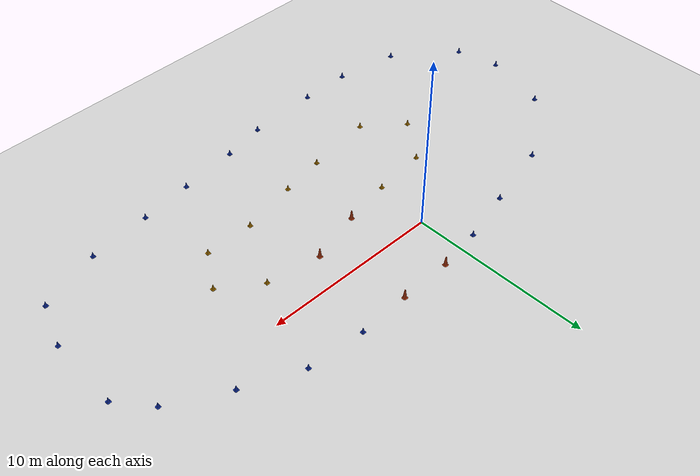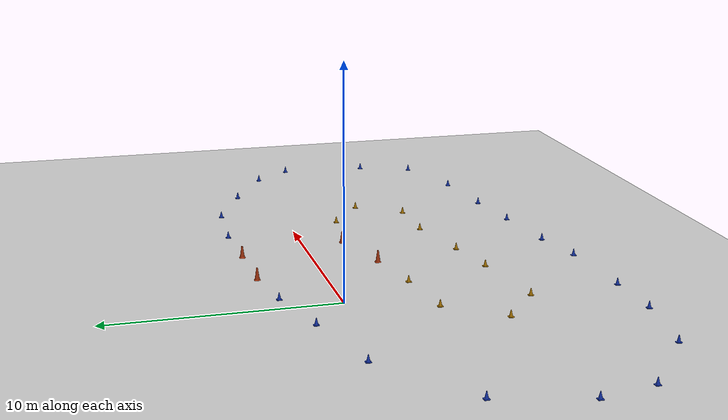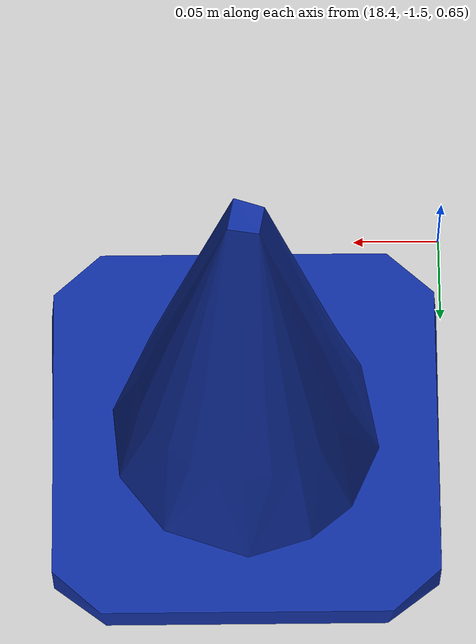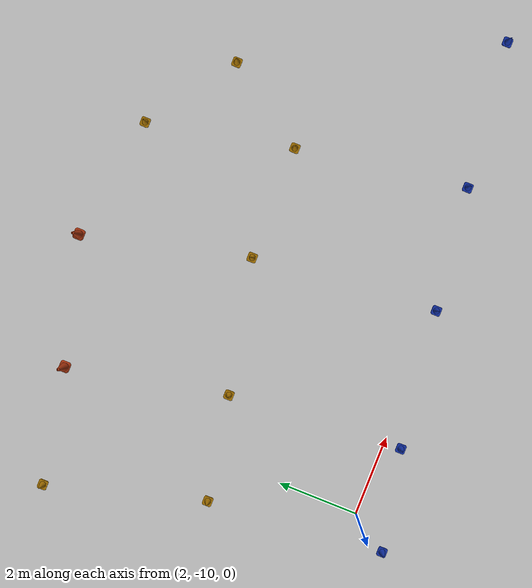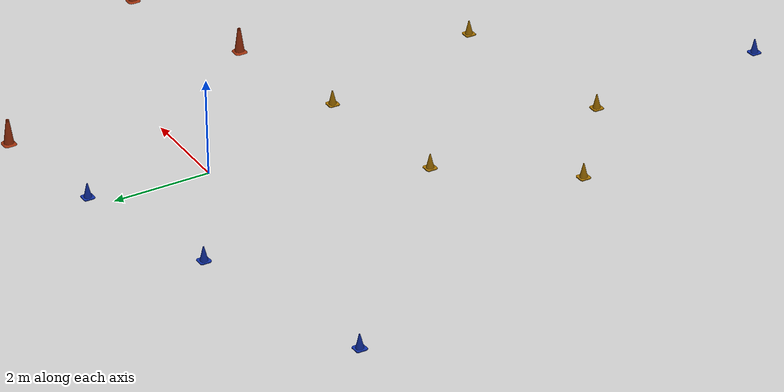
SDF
<sdf version='1.6'>
  <world name='Hairpin_02_03_2023'>
    <gui fullscreen='0'>
      <camera name='user_camera'>
        <pose frame=''>-40 40 20 0 0.667643 -1</pose>
        <view_controller>orbit</view_controller>
        <projection_type>perspective</projection_type>
      </camera>
    </gui>

    <!-- WORLD SETTINGS -->
    <scene>
      <ambient>1.0 1.0 1.0 1.0</ambient>
      <shadows>false</shadows>
    </scene>

    <spherical_coordinates>
      <heading_deg>180</heading_deg>

      <!-- Appleton Tower coordinates -->
      <latitude_deg>-27.690733</latitude_deg>
      <longitude_deg>152.656715</longitude_deg>
    </spherical_coordinates>

    <light name='sun' type='directional'>
      <cast_shadows>1</cast_shadows>
      <pose frame=''>0 0 10 0 -0 0</pose>
      <diffuse>0.8 0.8 0.8 1</diffuse>
      <specular>0.1 0.1 0.1 1</specular>
      <attenuation>
        <range>1000</range>
        <constant>0.9</constant>
        <linear>0.01</linear>
        <quadratic>0.001</quadratic>
      </attenuation>
      <direction>-0.5 0.5 -1</direction>
    </light>

    <!-- MODELS -->
    <include>
      <uri>model://ground_plane</uri>
      <pose>0.0 0.0 0.0 0 0 0</pose>
    </include>

    <include>
      <uri>model://Hairpin_02_03_2023</uri>
      <pose>0 0 0.5 0 0 0</pose>
    </include>

  </world>
</sdf>

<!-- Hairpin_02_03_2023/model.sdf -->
<sdf version='1.6'>
  <model name='track'>

    <include>
      <pose>7.304385152740191 -9.823166588847055 0.15 0 0 0</pose>
      <uri>model://blue_cone</uri>
      <name>blue_cone_0</name>

      <covariance x="0.1" y="0.1" xy="0"/>

    </include>

    <include>
      <pose>3.993105960561033 -10.247710339362833 0.15 0 0 0</pose>
      <uri>model://blue_cone</uri>
      <name>blue_cone_1</name>

      <covariance x="0.1" y="0.1" xy="0"/>

    </include>

    <include>
      <pose>7.808901087918861 3.4845943031325555 0.15 0 0 0</pose>
      <uri>model://blue_cone</uri>
      <name>blue_cone_2</name>

      <covariance x="0.1" y="0.1" xy="0"/>

    </include>

    <include>
      <pose>11.050359662609686 3.291682742274748 0.15 0 0 0</pose>
      <uri>model://blue_cone</uri>
      <name>blue_cone_3</name>

      <covariance x="0.1" y="0.1" xy="0"/>

    </include>

    <include>
      <pose>18.264113579425068 -5.4909271900222265 0.15 0 0 0</pose>
      <uri>model://blue_cone</uri>
      <name>blue_cone_4</name>

      <covariance x="0.1" y="0.1" xy="0"/>

    </include>

    <include>
      <pose>13.7708317195623 -9.035862047265605 0.15 0 0 0</pose>
      <uri>model://blue_cone</uri>
      <name>blue_cone_5</name>

      <covariance x="0.1" y="0.1" xy="0"/>

    </include>

    <include>
      <pose>14.132573152389025 1.9748198887865356 0.15 0 0 0</pose>
      <uri>model://blue_cone</uri>
      <name>blue_cone_6</name>

      <covariance x="0.1" y="0.1" xy="0"/>

    </include>

    <include>
      <pose>10.258496220047016 -9.43584212744786 0.15 0 0 0</pose>
      <uri>model://blue_cone</uri>
      <name>blue_cone_7</name>

      <covariance x="0.1" y="0.1" xy="0"/>

    </include>

    <include>
      <pose>17.269939966411645 -7.921044173772532 0.15 0 0 0</pose>
      <uri>model://blue_cone</uri>
      <name>blue_cone_8</name>

      <covariance x="0.1" y="0.1" xy="0"/>

    </include>

    <include>
      <pose>17.147320715211666 0.3383328480081254 0.15 0 0 0</pose>
      <uri>model://blue_cone</uri>
      <name>blue_cone_9</name>

      <covariance x="0.1" y="0.1" xy="0"/>

    </include>

    <include>
      <pose>18.515211784615133 -1.3725935532488165 0.15 0 0 0</pose>
      <uri>model://blue_cone</uri>
      <name>blue_cone_10</name>

      <covariance x="0.1" y="0.1" xy="0"/>

    </include>

    <include>
      <pose>1.5786705986614364 -10.735907328566642 0.15 0 0 0</pose>
      <uri>model://blue_cone</uri>
      <name>blue_cone_11</name>

      <covariance x="0.1" y="0.1" xy="0"/>

    </include>

    <include>
      <pose>-5.124085666468587 -10.969082053477589 0.15 0 0 0</pose>
      <uri>model://blue_cone</uri>
      <name>blue_cone_12</name>

      <covariance x="0.1" y="0.1" xy="0"/>

    </include>

    <include>
      <pose>-2.3564790163333127 -10.94494760214339 0.15 0 0 0</pose>
      <uri>model://blue_cone</uri>
      <name>blue_cone_13</name>

      <covariance x="0.1" y="0.1" xy="0"/>

    </include>

    <include>
      <pose>-8.572414712509104 -10.401889695227558 0.15 0 0 0</pose>
      <uri>model://blue_cone</uri>
      <name>blue_cone_14</name>

      <covariance x="0.1" y="0.1" xy="0"/>

    </include>

    <include>
      <pose>-3.638866226984933 1.9987835968486216 0.15 0 0 0</pose>
      <uri>model://blue_cone</uri>
      <name>blue_cone_15</name>

      <covariance x="0.1" y="0.1" xy="0"/>

    </include>

    <include>
      <pose>-11.400539690316924 -1.944936353271931 0.15 0 0 0</pose>
      <uri>model://blue_cone</uri>
      <name>blue_cone_16</name>

      <covariance x="0.1" y="0.1" xy="0"/>

    </include>

    <include>
      <pose>-12.337448310199294 -5.561462736381308 0.15 0 0 0</pose>
      <uri>model://blue_cone</uri>
      <name>blue_cone_17</name>

      <covariance x="0.1" y="0.1" xy="0"/>

    </include>

    <include>
      <pose>-7.48784627448812 1.015142646816794 0.15 0 0 0</pose>
      <uri>model://blue_cone</uri>
      <name>blue_cone_18</name>

      <covariance x="0.1" y="0.1" xy="0"/>

    </include>

    <include>
      <pose>-11.782248492108904 -7.915727968314391 0.15 0 0 0</pose>
      <uri>model://blue_cone</uri>
      <name>blue_cone_19</name>

      <covariance x="0.1" y="0.1" xy="0"/>

    </include>

    <include>
      <pose>-0.6145203392638353 2.814374362304254 0.15 0 0 0</pose>
      <uri>model://blue_cone</uri>
      <name>blue_cone_20</name>

      <covariance x="0.1" y="0.1" xy="0"/>

    </include>

    <include>
      <pose>8.880858305748085 -1.8416048422125848 0.15 0 0 0</pose>
      <uri>model://yellow_cone</uri>
      <name>yellow_cone_21</name>

      <covariance x="0.1" y="0.1" xy="0"/>

    </include>

    <include>
      <pose>10.98178063312362 -3.3199982647931083 0.15 0 0 0</pose>
      <uri>model://yellow_cone</uri>
      <name>yellow_cone_22</name>

      <covariance x="0.1" y="0.1" xy="0"/>

    </include>

    <include>
      <pose>9.615498001540846 -5.326765336292018 0.15 0 0 0</pose>
      <uri>model://yellow_cone</uri>
      <name>yellow_cone_23</name>

      <covariance x="0.1" y="0.1" xy="0"/>

    </include>

    <include>
      <pose>3.665371732548932 -6.038566681612688 0.15 0 0 0</pose>
      <uri>model://yellow_cone</uri>
      <name>yellow_cone_24</name>

      <covariance x="0.1" y="0.1" xy="0"/>

    </include>

    <include>
      <pose>-2.6175679653433828 -7.045892963073357 0.15 0 0 0</pose>
      <uri>model://yellow_cone</uri>
      <name>yellow_cone_25</name>

      <covariance x="0.1" y="0.1" xy="0"/>

    </include>

    <include>
      <pose>1.1726756580299005 -6.498400960205347 0.15 0 0 0</pose>
      <uri>model://yellow_cone</uri>
      <name>yellow_cone_26</name>

      <covariance x="0.1" y="0.1" xy="0"/>

    </include>

    <include>
      <pose>-4.662174247737055 -5.407601548018367 0.15 0 0 0</pose>
      <uri>model://yellow_cone</uri>
      <name>yellow_cone_27</name>

      <covariance x="0.1" y="0.1" xy="0"/>

    </include>

    <include>
      <pose>-2.915534184344092 -3.138295219845588 0.15 0 0 0</pose>
      <uri>model://yellow_cone</uri>
      <name>yellow_cone_28</name>

      <covariance x="0.1" y="0.1" xy="0"/>

    </include>

    <include>
      <pose>0.1015130630881643 -2.762500568633439 0.15 0 0 0</pose>
      <uri>model://yellow_cone</uri>
      <name>yellow_cone_29</name>

      <covariance x="0.1" y="0.1" xy="0"/>

    </include>

    <include>
      <pose>6.8622816308096 -5.348793909953453 0.15 0 0 0</pose>
      <uri>model://yellow_cone</uri>
      <name>yellow_cone_30</name>

      <covariance x="0.1" y="0.1" xy="0"/>

    </include>

    <include>
      <pose>5.864889639609889 -1.37548653559188 0.15 0 0 0</pose>
      <uri>model://big_cone</uri>
      <name>big_cone_31</name>

      <covariance x="0.1" y="0.1" xy="0"/>

    </include>

    <include>
      <pose>2.856486859616506 -2.2149538092161896 0.15 0 0 0</pose>
      <uri>model://big_cone</uri>
      <name>big_cone_32</name>

      <covariance x="0.1" y="0.1" xy="0"/>

    </include>

    <include>
      <pose>1.8994664630126985 3.233600687988845 0.15 0 0 0</pose>
      <uri>model://big_cone</uri>
      <name>big_cone_33</name>

      <covariance x="0.1" y="0.1" xy="0"/>

    </include>

    <include>
      <pose>4.883197918476752 3.34197919664729 0.15 0 0 0</pose>
      <uri>model://big_cone</uri>
      <name>big_cone_34</name>

      <covariance x="0.1" y="0.1" xy="0"/>

    </include>

    <static>0</static>
    <allow_auto_disable>1</allow_auto_disable>
  </model>
</sdf>

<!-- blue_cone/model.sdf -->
<sdf version='1.6'>
  <model name='blue_cone'>
    <link name='link'>
      <pose frame=''>0 0 0 0 0 0</pose>
      <inertial>
        <inertia>
          <ixx>0.0016</ixx>
          <ixy>0</ixy>
          <ixz>0</ixz>
          <iyy>0.0016</iyy>
          <iyz>0</iyz>
          <izz>0.0010</izz>
        </inertia>
        <mass>0.45</mass>
      </inertial>
      <visual name='visual'>
        <geometry>
          <mesh>
            <uri>model://cone_blue.dae</uri>
          </mesh>
        </geometry>
        <cast_shadows>1</cast_shadows>
      </visual>
      <collision name='collision'>
        <max_contacts>3</max_contacts>
        <geometry>
          <mesh>
            <uri>model://cone_blue.dae</uri>
          </mesh>
        </geometry>
      </collision>
    </link>
  </model>
</sdf>

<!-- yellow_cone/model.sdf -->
<sdf version='1.6'>
  <model name='yellow_cone'>
    <link name='link'>
      <pose frame=''>0 0 0 0 0 0</pose>
      <inertial>
        <inertia>
          <ixx>0.0016</ixx>
          <ixy>0</ixy>
          <ixz>0</ixz>
          <iyy>0.0016</iyy>
          <iyz>0</iyz>
          <izz>0.0010</izz>
        </inertia>
        <mass>0.45</mass>
      </inertial>
      <visual name='visual'>
        <geometry>
          <mesh>
            <uri>model://cone_yellow.dae</uri>
          </mesh>
        </geometry>
        <cast_shadows>1</cast_shadows>
      </visual>
      <collision name='collision'>
        <max_contacts>3</max_contacts>
        <geometry>
          <mesh>
            <uri>model://cone_yellow.dae</uri>
          </mesh>
        </geometry>
      </collision>
    </link>
  </model>
</sdf>

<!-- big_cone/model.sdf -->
<sdf version='1.6'>
  <model name='big_cone'>
    <link name='link'>
      <pose frame=''>0 0 0 0 0 0</pose>
      <inertial>
        <inertia>
          <ixx>0.0016</ixx>
          <ixy>0</ixy>
          <ixz>0</ixz>
          <iyy>0.0016</iyy>
          <iyz>0</iyz>
          <izz>0.0010</izz>
        </inertia>
        <mass>0.45</mass>
      </inertial>
      <visual name='visual'>
        <geometry>
          <mesh>
            <uri>model://cone_big.dae</uri>
          </mesh>
        </geometry>
        <cast_shadows>1</cast_shadows>
      </visual>
      <collision name='collision'>
        <max_contacts>3</max_contacts>
        <geometry>
          <mesh>
            <uri>model://cone_big.dae</uri>
          </mesh>
        </geometry>
      </collision>
    </link>
  </model>
</sdf>
